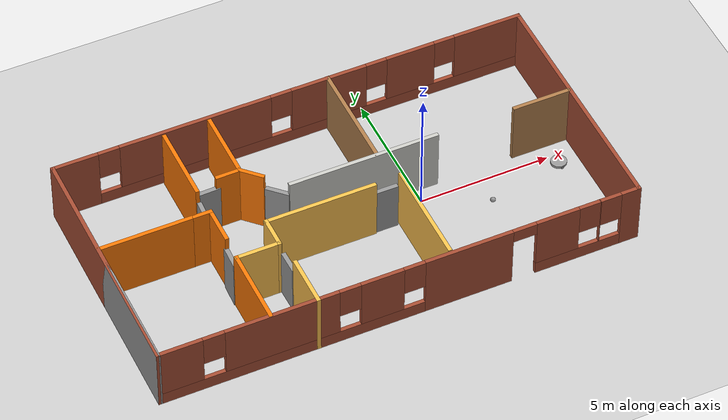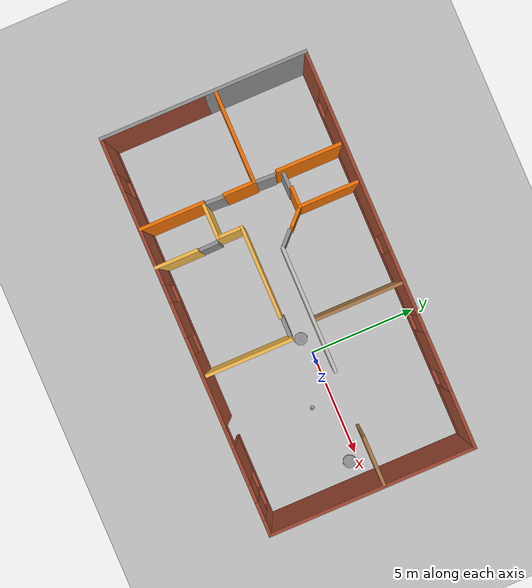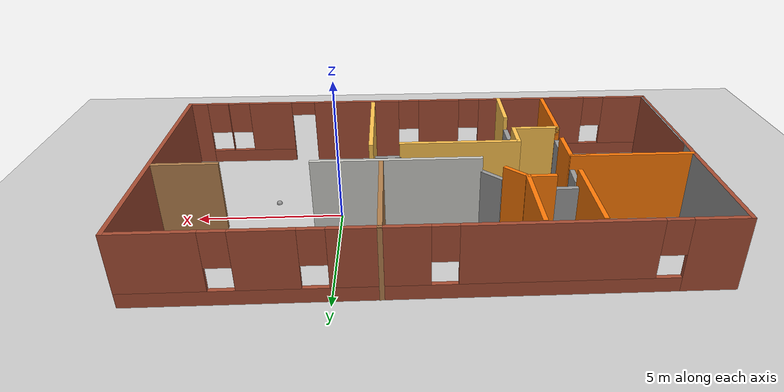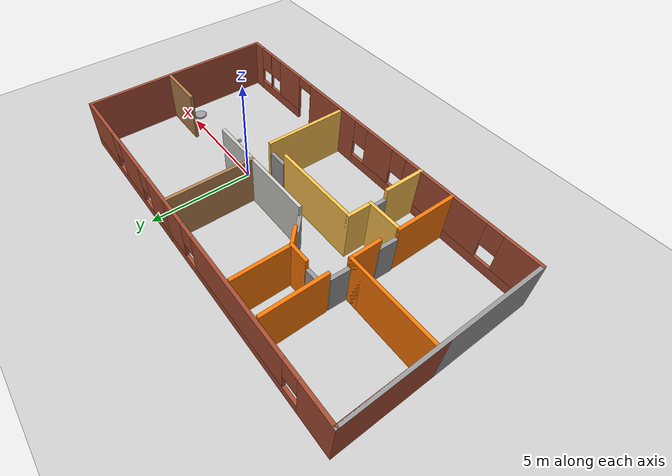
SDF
<sdf version="1.6">
 <world name="default">
  <plugin name="greeting" filename="libgreeting.so"/>
  <light name="sun" type="directional">
   <pose>0 0 10 0 -0 0</pose>
   <diffuse>0.8 0.8 0.8 1</diffuse>
   <specular>0.2 0.2 0.2 1</specular>
   <attenuation>
    <range>1000</range>
    <constant>0.9</constant>
    <linear>0.01</linear>
    <quadratic>0.001</quadratic>
   </attenuation>
   <direction>-0.5 0.1 -0.9</direction>
  </light>
  <model name="ground_plane">
   <static>1</static>
   <link name="link">
    <collision name="collision">
     <geometry><plane><normal>0 0 1</normal><size>100 100</size></plane></geometry>
     <surface><friction><ode><mu>100</mu><mu2>50</mu2></ode></friction></surface>
    </collision>
    <visual name="visual">
     <cast_shadows>0</cast_shadows>
     <geometry><plane><normal>0 0 1</normal><size>100 100</size></plane></geometry>
     <material>
      <script><uri>file://media/materials/scripts/gazebo.material</uri><name>Gazebo/Grey</name></script>
     </material>
    </visual>
   </link>
  </model>
  <gravity>0 0 -9.8</gravity>
  <magnetic_field>6e-06 2.3e-05 -4.2e-05</magnetic_field>
  <atmosphere type="adiabatic"/>
  <physics name="default_physics" default="0" type="ode">
   <max_step_size>0.001</max_step_size>
   <real_time_factor>1</real_time_factor>
   <real_time_update_rate>1000</real_time_update_rate>
  </physics>
  <scene><ambient>0.4 0.4 0.4 1</ambient><background>0.7 0.7 0.7 1</background><shadows>1</shadows></scene>
  <spherical_coordinates>
   <surface_model>EARTH_WGS84</surface_model>
   <latitude_deg>0</latitude_deg>
   <longitude_deg>0</longitude_deg>
   <elevation>0</elevation>
   <heading_deg>0</heading_deg>
  </spherical_coordinates>
  <model name="building">
   <pose>-2.94914 0.04441 0 0 -0 0</pose>
   <link name="Door_1">
    <collision name="Door_1_Collision">
     <geometry><box><size>0.9 0.17 2</size></box></geometry>
     <pose>0 0 1 0 -0 0</pose>
    </collision>
    <visual name="Door_1_Visual">
     <pose>0 0 1 0 -0 0</pose>
     <geometry><box><size>0.9 0.17 2</size></box></geometry>
     <material>
      <script><uri>file://media/materials/scripts/gazebo.material</uri><name>Gazebo/Grey</name></script>
     </material>
    </visual>
    <pose>-4.38941 1.85864 0 0 0 -3.11838</pose>
   </link>
   <link name="Door_2">
    <collision name="Door_2_Collision">
     <geometry><box><size>0.9 0.17 2</size></box></geometry>
     <pose>0 0 1 0 -0 0</pose>
    </collision>
    <visual name="Door_2_Visual">
     <pose>0 0 1 0 -0 0</pose>
     <geometry><box><size>0.9 0.17 2</size></box></geometry>
     <material>
      <script><uri>file://media/materials/scripts/gazebo.material</uri><name>Gazebo/Grey</name></script>
     </material>
    </visual>
    <pose>-4.90957 1.04007 0 0 0 -1.61302</pose>
   </link>
   <link name="Door_3">
    <collision name="Door_3_Collision">
     <geometry><box><size>0.9 0.17 2</size></box></geometry>
     <pose>0 0 1 0 -0 0</pose>
    </collision>
    <visual name="Door_3_Visual">
     <pose>0 0 1 0 -0 0</pose>
     <geometry><box><size>0.9 0.17 2</size></box></geometry>
     <material>
      <script><uri>file://media/materials/scripts/gazebo.material</uri><name>Gazebo/Grey</name></script>
     </material>
    </visual>
    <pose>-4.90957 -1.28479 0 0 0 -1.60782</pose>
   </link>
   <link name="Door_4">
    <collision name="Door_4_Collision">
     <geometry><box><size>0.9 0.17 2</size></box></geometry>
     <pose>0 0 1 0 -0 0</pose>
    </collision>
    <visual name="Door_4_Visual">
     <pose>0 0 1 0 -0 0</pose>
     <geometry><box><size>0.9 0.17 2</size></box></geometry>
     <material>
      <script><uri>file://media/materials/scripts/gazebo.material</uri><name>Gazebo/Grey</name></script>
     </material>
    </visual>
    <pose>-3.19652 -2.32486 0 0 0 -1.55609</pose>
   </link>
   <link name="Door_5">
    <collision name="Door_5_Collision">
     <geometry><box><size>0.9 0.17 2</size></box></geometry>
     <pose>0 0 1 0 -0 0</pose>
    </collision>
    <visual name="Door_5_Visual">
     <pose>0 0 1 0 -0 0</pose>
     <geometry><box><size>0.9 0.17 2</size></box></geometry>
     <material>
      <script><uri>file://media/materials/scripts/gazebo.material</uri><name>Gazebo/Grey</name></script>
     </material>
    </visual>
    <pose>1.26966 -0.642395 0 0 -0 0</pose>
   </link>
   <link name="Door_7">
    <collision name="Door_7_Collision">
     <geometry><box><size>0.9 0.17 2</size></box></geometry>
     <pose>0 0 1 0 -0 0</pose>
    </collision>
    <visual name="Door_7_Visual">
     <pose>0 0 1 0 -0 0</pose>
     <geometry><box><size>0.9 0.17 2</size></box></geometry>
     <material>
      <script><uri>file://media/materials/scripts/gazebo.material</uri><name>Gazebo/Grey</name></script>
     </material>
    </visual>
    <pose>-2.18704 0.856526 0 0 -0 2.36718</pose>
   </link>
   <link name="Wall_0">
    <collision name="Wall_0_Collision">
     <geometry><box><size>9.5 0.15 2.5</size></box></geometry>
     <pose>0 0 1.25 0 -0 0</pose>
    </collision>
    <visual name="Wall_0_Visual">
     <pose>0 0 1.25 0 -0 0</pose>
     <geometry><box><size>9.5 0.15 2.5</size></box></geometry>
     <material>
      <script><uri>file://media/materials/scripts/gazebo.material</uri><name>Gazebo/Grey</name></script>
      <ambient>1 1 1 1</ambient>
     </material>
     <meta><layer>0</layer></meta>
    </visual>
    <pose>-9.05 -0.002064 0 0 0 -1.5708</pose>
   </link>
   <link name="Wall_1">
    <collision name="Wall_1_Collision">
     <geometry><box><size>9.5 0.15 2.5</size></box></geometry>
     <pose>0 0 1.25 0 -0 0</pose>
    </collision>
    <visual name="Wall_1_Visual">
     <pose>0 0 1.25 0 -0 0</pose>
     <geometry><box><size>9.5 0.15 2.5</size></box></geometry>
     <material>
      <script><uri>file://media/materials/scripts/gazebo.material</uri><name>Gazebo/Bricks</name></script>
      <ambient>0.760784 0.662745 0.627451 1</ambient>
     </material>
     <meta><layer>0</layer></meta>
    </visual>
    <pose>-9.05 -0.002064 0 0 -0 1.5708</pose>
   </link>
   <link name="Wall_11">
    <collision name="Wall_11_Collision">
     <geometry><box><size>0.75 0.15 2.5</size></box></geometry>
     <pose>0 0 1.25 0 -0 0</pose>
    </collision>
    <visual name="Wall_11_Visual">
     <pose>0 0 1.25 0 -0 0</pose>
     <geometry><box><size>0.75 0.15 2.5</size></box></geometry>
     <material>
      <script><uri>file://media/materials/scripts/gazebo.material</uri><name>Gazebo/Grey</name></script>
      <ambient>0.996078 0.47451 0.0196078 1</ambient>
     </material>
     <meta><layer>0</layer></meta>
    </visual>
    <pose>-5.16476 0.532558 0 0 -0 0</pose>
   </link>
   <link name="Wall_14">
    <collision name="Wall_14_Collision">
     <geometry><box><size>3 0.15 2.5</size></box></geometry>
     <pose>0 0 1.25 0 -0 0</pose>
    </collision>
    <visual name="Wall_14_Visual">
     <pose>0 0 1.25 0 -0 0</pose>
     <geometry><box><size>3 0.15 2.5</size></box></geometry>
     <material>
      <script><uri>file://media/materials/scripts/gazebo.material</uri><name>Gazebo/Grey</name></script>
      <ambient>0.996078 0.47451 0.0196078 1</ambient>
     </material>
     <meta><layer>0</layer></meta>
    </visual>
    <pose>-4.90962 -3.2237 0 0 -0 1.5708</pose>
   </link>
   <link name="Wall_15">
    <collision name="Wall_15_Collision">
     <geometry><box><size>1.75 0.15 2.5</size></box></geometry>
     <pose>0 0 1.25 0 -0 0</pose>
    </collision>
    <visual name="Wall_15_Visual">
     <pose>0 0 1.25 0 -0 0</pose>
     <geometry><box><size>1.75 0.15 2.5</size></box></geometry>
     <material>
      <script><uri>file://media/materials/scripts/gazebo.material</uri><name>Gazebo/Grey</name></script>
      <ambient>1 0.764706 0.305882 1</ambient>
     </material>
     <meta><layer>0</layer></meta>
    </visual>
    <pose>-4.10962 -1.7987 0 0 -0 0</pose>
   </link>
   <link name="Wall_16">
    <collision name="Wall_16_Collision">
     <geometry><box><size>1.25 0.15 2.5</size></box></geometry>
     <pose>0 0 1.25 0 -0 0</pose>
    </collision>
    <visual name="Wall_16_Visual">
     <pose>0 0 1.25 0 -0 0</pose>
     <geometry><box><size>1.25 0.15 2.5</size></box></geometry>
     <material>
      <script><uri>file://media/materials/scripts/gazebo.material</uri><name>Gazebo/Grey</name></script>
      <ambient>1 0.764706 0.305882 1</ambient>
     </material>
     <meta><layer>0</layer></meta>
    </visual>
    <pose>-3.30962 -1.2487 0 0 -0 1.5708</pose>
   </link>
   <link name="Wall_17">
    <collision name="Wall_17_Collision">
     <geometry><box><size>4.25 0.15 2.5</size></box></geometry>
     <pose>0 0 1.25 0 -0 0</pose>
    </collision>
    <visual name="Wall_17_Visual">
     <pose>0 0 1.25 0 -0 0</pose>
     <geometry><box><size>4.25 0.15 2.5</size></box></geometry>
     <material>
      <script><uri>file://media/materials/scripts/gazebo.material</uri><name>Gazebo/Grey</name></script>
      <ambient>1 0.764706 0.305882 1</ambient>
     </material>
     <meta><layer>0</layer></meta>
    </visual>
    <pose>-1.25962 -0.698699 0 0 -0 0</pose>
   </link>
   <link name="Wall_19">
    <collision name="Wall_19_Collision">
     <geometry><box><size>4 0.15 2.5</size></box></geometry>
     <pose>0 0 1.25 0 -0 0</pose>
    </collision>
    <visual name="Wall_19_Visual">
     <pose>0 0 1.25 0 -0 0</pose>
     <geometry><box><size>4 0.15 2.5</size></box></geometry>
     <material>
      <script><uri>file://media/materials/scripts/gazebo.material</uri><name>Gazebo/Grey</name></script>
      <ambient>1 0.764706 0.305882 1</ambient>
     </material>
     <meta><layer>0</layer></meta>
    </visual>
    <pose>1.85087 -2.56739 0 0 0 -1.5708</pose>
   </link>
   <link name="Wall_2">
    <pose>0 4.67294 0 0 -0 0</pose>
    <visual name="Wall_2_Visual_0">
     <pose>-8.24206 0 1.25 0 -0 0</pose>
     <geometry><box><size>1.76589 0.15 2.5</size></box></geometry>
     <material>
      <script><uri>file://media/materials/scripts/gazebo.material</uri><name>Gazebo/Bricks</name></script>
      <ambient>0.760784 0.662745 0.627451 1</ambient>
     </material>
     <meta><layer>0</layer></meta>
    </visual>
    <collision name="Wall_2_Collision_0">
     <geometry><box><size>1.76589 0.15 2.5</size></box></geometry>
     <pose>-8.24206 0 1.25 0 -0 0</pose>
    </collision>
    <visual name="Wall_2_Visual_1">
     <pose>0.882943 0 0.25 0 -0 0</pose>
     <geometry><box><size>16.4841 0.15 0.5</size></box></geometry>
     <material>
      <script><uri>file://media/materials/scripts/gazebo.material</uri><name>Gazebo/Bricks</name></script>
      <ambient>0.760784 0.662745 0.627451 1</ambient>
     </material>
     <meta><layer>0</layer></meta>
    </visual>
    <collision name="Wall_2_Collision_1">
     <geometry><box><size>16.4841 0.15 0.5</size></box></geometry>
     <pose>0.882943 0 0.25 0 -0 0</pose>
    </collision>
    <visual name="Wall_2_Visual_2">
     <pose>-3.65537 0 1.5 0 -0 0</pose>
     <geometry><box><size>5.80749 0.15 2</size></box></geometry>
     <material>
      <script><uri>file://media/materials/scripts/gazebo.material</uri><name>Gazebo/Bricks</name></script>
      <ambient>0.760784 0.662745 0.627451 1</ambient>
     </material>
     <meta><layer>0</layer></meta>
    </visual>
    <collision name="Wall_2_Collision_2">
     <geometry><box><size>5.80749 0.15 2</size></box></geometry>
     <pose>-3.65537 0 1.5 0 -0 0</pose>
    </collision>
    <visual name="Wall_2_Visual_3">
     <pose>1.51438 0 1.5 0 -0 0</pose>
     <geometry><box><size>2.93201 0.15 2</size></box></geometry>
     <material>
      <script><uri>file://media/materials/scripts/gazebo.material</uri><name>Gazebo/Bricks</name></script>
      <ambient>0.760784 0.662745 0.627451 1</ambient>
     </material>
     <meta><layer>0</layer></meta>
    </visual>
    <collision name="Wall_2_Collision_3">
     <geometry><box><size>2.93201 0.15 2</size></box></geometry>
     <pose>1.51438 0 1.5 0 -0 0</pose>
    </collision>
    <visual name="Wall_2_Visual_4">
     <pose>4.72635 0 1.5 0 -0 0</pose>
     <geometry><box><size>1.89194 0.15 2</size></box></geometry>
     <material>
      <script><uri>file://media/materials/scripts/gazebo.material</uri><name>Gazebo/Bricks</name></script>
      <ambient>0.760784 0.662745 0.627451 1</ambient>
     </material>
     <meta><layer>0</layer></meta>
    </visual>
    <collision name="Wall_2_Collision_4">
     <geometry><box><size>1.89194 0.15 2</size></box></geometry>
     <pose>4.72635 0 1.5 0 -0 0</pose>
    </collision>
    <visual name="Wall_2_Visual_5">
     <pose>7.79866 0 1.5 0 -0 0</pose>
     <geometry><box><size>2.65268 0.15 2</size></box></geometry>
     <material>
      <script><uri>file://media/materials/scripts/gazebo.material</uri><name>Gazebo/Bricks</name></script>
      <ambient>0.760784 0.662745 0.627451 1</ambient>
     </material>
     <meta><layer>0</layer></meta>
    </visual>
    <collision name="Wall_2_Collision_5">
     <geometry><box><size>2.65268 0.15 2</size></box></geometry>
     <pose>7.79866 0 1.5 0 -0 0</pose>
    </collision>
    <visual name="Wall_2_Visual_6">
     <pose>-6.95911 0 1.9 0 -0 0</pose>
     <geometry><box><size>0.8 0.15 1.2</size></box></geometry>
     <material>
      <script><uri>file://media/materials/scripts/gazebo.material</uri><name>Gazebo/Bricks</name></script>
      <ambient>0.760784 0.662745 0.627451 1</ambient>
     </material>
     <meta><layer>0</layer></meta>
    </visual>
    <collision name="Wall_2_Collision_6">
     <geometry><box><size>0.8 0.15 1.2</size></box></geometry>
     <pose>-6.95911 0 1.9 0 -0 0</pose>
    </collision>
    <visual name="Wall_2_Visual_7">
     <pose>-0.351624 0 1.9 0 -0 0</pose>
     <geometry><box><size>0.8 0.15 1.2</size></box></geometry>
     <material>
      <script><uri>file://media/materials/scripts/gazebo.material</uri><name>Gazebo/Bricks</name></script>
      <ambient>0.760784 0.662745 0.627451 1</ambient>
     </material>
     <meta><layer>0</layer></meta>
    </visual>
    <collision name="Wall_2_Collision_7">
     <geometry><box><size>0.8 0.15 1.2</size></box></geometry>
     <pose>-0.351624 0 1.9 0 -0 0</pose>
    </collision>
    <visual name="Wall_2_Visual_8">
     <pose>3.38038 0 1.9 0 -0 0</pose>
     <geometry><box><size>0.8 0.15 1.2</size></box></geometry>
     <material>
      <script><uri>file://media/materials/scripts/gazebo.material</uri><name>Gazebo/Bricks</name></script>
      <ambient>0.760784 0.662745 0.627451 1</ambient>
     </material>
     <meta><layer>0</layer></meta>
    </visual>
    <collision name="Wall_2_Collision_8">
     <geometry><box><size>0.8 0.15 1.2</size></box></geometry>
     <pose>3.38038 0 1.9 0 -0 0</pose>
    </collision>
    <visual name="Wall_2_Visual_9">
     <pose>6.07232 0 1.9 0 -0 0</pose>
     <geometry><box><size>0.8 0.15 1.2</size></box></geometry>
     <material>
      <script><uri>file://media/materials/scripts/gazebo.material</uri><name>Gazebo/Bricks</name></script>
      <ambient>0.760784 0.662745 0.627451 1</ambient>
     </material>
     <meta><layer>0</layer></meta>
    </visual>
    <collision name="Wall_2_Collision_9">
     <geometry><box><size>0.8 0.15 1.2</size></box></geometry>
     <pose>6.07232 0 1.9 0 -0 0</pose>
    </collision>
   </link>
   <link name="Wall_21">
    <collision name="Wall_21_Collision">
     <geometry><box><size>5.75 0.15 2.5</size></box></geometry>
     <pose>0 0 1.25 0 -0 0</pose>
    </collision>
    <visual name="Wall_21_Visual">
     <pose>0 0 1.25 0 -0 0</pose>
     <geometry><box><size>5.75 0.15 2.5</size></box></geometry>
     <material>
      <script><uri>file://media/materials/scripts/gazebo.material</uri><name>Gazebo/CeilingTiled</name></script>
      <ambient>0.435294 0.796078 0.67451 1</ambient>
     </material>
     <meta><layer>0</layer></meta>
    </visual>
    <pose>0.978057 0.550624 0 0 -0 3.14159</pose>
   </link>
   <link name="Wall_23">
    <collision name="Wall_23_Collision">
     <geometry><box><size>4.25 0.15 2.5</size></box></geometry>
     <pose>0 0 1.25 0 -0 0</pose>
    </collision>
    <visual name="Wall_23_Visual">
     <pose>0 0 1.25 0 -0 0</pose>
     <geometry><box><size>4.25 0.15 2.5</size></box></geometry>
     <material>
      <script><uri>file://media/materials/scripts/gazebo.material</uri><name>Gazebo/Wood</name></script>
      <ambient>0.435294 0.796078 0.67451 1</ambient>
     </material>
     <meta><layer>0</layer></meta>
    </visual>
    <pose>1.48379 2.6303 0 0 0 -1.5708</pose>
   </link>
   <link name="Wall_25">
    <collision name="Wall_25_Collision">
     <geometry><box><size>2.25 0.15 2.5</size></box></geometry>
     <pose>0 0 1.25 0 -0 0</pose>
    </collision>
    <visual name="Wall_25_Visual">
     <pose>0 0 1.25 0 -0 0</pose>
     <geometry><box><size>2.25 0.15 2.5</size></box></geometry>
     <material>
      <script><uri>file://media/materials/scripts/gazebo.material</uri><name>Gazebo/Wood</name></script>
      <ambient>0.435294 0.796078 0.67451 1</ambient>
     </material>
     <meta><layer>0</layer></meta>
    </visual>
    <pose>7.91767 0.550624 0 0 -0 0</pose>
   </link>
   <link name="Wall_27">
    <collision name="Wall_27_Collision">
     <geometry><box><size>3 0.15 2.5</size></box></geometry>
     <pose>0 0 1.25 0 -0 0</pose>
    </collision>
    <visual name="Wall_27_Visual">
     <pose>0 0 1.25 0 -0 0</pose>
     <geometry><box><size>3 0.15 2.5</size></box></geometry>
     <material>
      <script><uri>file://media/materials/scripts/gazebo.material</uri><name>Gazebo/Grey</name></script>
      <ambient>0.996078 0.47451 0.0196078 1</ambient>
     </material>
     <meta><layer>0</layer></meta>
    </visual>
    <pose>-4.90957 3.04628 0 0 -0 1.5708</pose>
   </link>
   <link name="Wall_29">
    <collision name="Wall_29_Collision">
     <geometry><box><size>2.75 0.15 2.5</size></box></geometry>
     <pose>0 0 1.25 0 -0 0</pose>
    </collision>
    <visual name="Wall_29_Visual">
     <pose>0 0 1.25 0 -0 0</pose>
     <geometry><box><size>2.75 0.15 2.5</size></box></geometry>
     <material>
      <script><uri>file://media/materials/scripts/gazebo.material</uri><name>Gazebo/Grey</name></script>
      <ambient>0.996078 0.47451 0.0196078 1</ambient>
     </material>
     <meta><layer>0</layer></meta>
    </visual>
    <pose>-3.16593 3.19659 0 0 -0 1.5708</pose>
   </link>
   <link name="Wall_3">
    <collision name="Wall_3_Collision">
     <geometry><box><size>9.5 0.15 2.5</size></box></geometry>
     <pose>0 0 1.25 0 -0 0</pose>
    </collision>
    <visual name="Wall_3_Visual">
     <pose>0 0 1.25 0 -0 0</pose>
     <geometry><box><size>9.5 0.15 2.5</size></box></geometry>
     <material>
      <script><uri>file://media/materials/scripts/gazebo.material</uri><name>Gazebo/Bricks</name></script>
      <ambient>0.760784 0.662745 0.627451 1</ambient>
     </material>
     <meta><layer>0</layer></meta>
    </visual>
    <pose>9.05 -0.002064 0 0 0 -1.5708</pose>
   </link>
   <link name="Wall_31">
    <collision name="Wall_31_Collision">
     <geometry><box><size>1 0.15 2.5</size></box></geometry>
     <pose>0 0 1.25 0 -0 0</pose>
    </collision>
    <visual name="Wall_31_Visual">
     <pose>0 0 1.25 0 -0 0</pose>
     <geometry><box><size>1 0.15 2.5</size></box></geometry>
     <material>
      <script><uri>file://media/materials/scripts/gazebo.material</uri><name>Gazebo/Grey</name></script>
      <ambient>0.996078 0.47451 0.0196078 1</ambient>
     </material>
     <meta><layer>0</layer></meta>
    </visual>
    <pose>-3.59092 1.89659 0 0 -0 3.14159</pose>
   </link>
   <link name="Wall_33">
    <collision name="Wall_33_Collision">
     <geometry><box><size>1.5 0.15 2.5</size></box></geometry>
     <pose>0 0 1.25 0 -0 0</pose>
    </collision>
    <visual name="Wall_33_Visual">
     <pose>0 0 1.25 0 -0 0</pose>
     <geometry><box><size>1.5 0.15 2.5</size></box></geometry>
     <material>
      <script><uri>file://media/materials/scripts/gazebo.material</uri><name>Gazebo/Grey</name></script>
      <ambient>0.996078 0.47451 0.0196078 1</ambient>
     </material>
     <meta><layer>0</layer></meta>
    </visual>
    <pose>-4.86476 -0.142442 0 0 0 -1.5708</pose>
   </link>
   <link name="Wall_35">
    <collision name="Wall_35_Collision">
     <geometry><box><size>2 0.15 2.5</size></box></geometry>
     <pose>0 0 1.25 0 -0 0</pose>
    </collision>
    <visual name="Wall_35_Visual">
     <pose>0 0 1.25 0 -0 0</pose>
     <geometry><box><size>2 0.15 2.5</size></box></geometry>
     <material>
      <script><uri>file://media/materials/scripts/gazebo.material</uri><name>Gazebo/Grey</name></script>
      <ambient>1 0.764706 0.305882 1</ambient>
     </material>
     <meta><layer>0</layer></meta>
    </visual>
    <pose>-3.16593 -3.7553 0 0 -0 1.5708</pose>
   </link>
   <link name="Wall_37">
    <collision name="Wall_37_Collision">
     <geometry><box><size>1 0.15 2.5</size></box></geometry>
     <pose>0 0 1.25 0 -0 0</pose>
    </collision>
    <visual name="Wall_37_Visual">
     <pose>0 0 1.25 0 -0 0</pose>
     <geometry><box><size>1 0.15 2.5</size></box></geometry>
     <material>
      <script><uri>file://media/materials/scripts/gazebo.material</uri><name>Gazebo/Grey</name></script>
      <ambient>0.996078 0.47451 0.0196078 1</ambient>
     </material>
     <meta><layer>0</layer></meta>
    </visual>
    <pose>-2.8654 1.59607 0 0 0 -0.785398</pose>
   </link>
   <link name="Wall_4">
    <pose>0 -4.67706 0 0 -0 3.14159</pose>
    <visual name="Wall_4_Visual_0">
     <pose>-8.74696 0 1.25 0 -0 0</pose>
     <geometry><box><size>0.756082 0.15 2.5</size></box></geometry>
     <material>
      <script><uri>file://media/materials/scripts/gazebo.material</uri><name>Gazebo/Bricks</name></script>
      <ambient>0.760784 0.662745 0.627451 1</ambient>
     </material>
     <meta><layer>0</layer></meta>
    </visual>
    <collision name="Wall_4_Collision_0">
     <geometry><box><size>0.756082 0.15 2.5</size></box></geometry>
     <pose>-8.74696 0 1.25 0 -0 0</pose>
    </collision>
    <visual name="Wall_4_Visual_1">
     <pose>-2.51415 0 1.25 0 -0 0</pose>
     <geometry><box><size>3.34086 0.15 2.5</size></box></geometry>
     <material>
      <script><uri>file://media/materials/scripts/gazebo.material</uri><name>Gazebo/Bricks</name></script>
      <ambient>0.760784 0.662745 0.627451 1</ambient>
     </material>
     <meta><layer>0</layer></meta>
    </visual>
    <collision name="Wall_4_Collision_1">
     <geometry><box><size>3.34086 0.15 2.5</size></box></geometry>
     <pose>-2.51415 0 1.25 0 -0 0</pose>
    </collision>
    <visual name="Wall_4_Visual_2">
     <pose>-6.72675 0 0.25 0 -0 0</pose>
     <geometry><box><size>3.28434 0.15 0.5</size></box></geometry>
     <material>
      <script><uri>file://media/materials/scripts/gazebo.material</uri><name>Gazebo/Bricks</name></script>
      <ambient>0.760784 0.662745 0.627451 1</ambient>
     </material>
     <meta><layer>0</layer></meta>
    </visual>
    <collision name="Wall_4_Collision_2">
     <geometry><box><size>3.28434 0.15 0.5</size></box></geometry>
     <pose>-6.72675 0 0.25 0 -0 0</pose>
    </collision>
    <visual name="Wall_4_Visual_3">
     <pose>4.14064 0 0.25 0 -0 0</pose>
     <geometry><box><size>9.96872 0.15 0.5</size></box></geometry>
     <material>
      <script><uri>file://media/materials/scripts/gazebo.material</uri><name>Gazebo/Bricks</name></script>
      <ambient>0.760784 0.662745 0.627451 1</ambient>
     </material>
     <meta><layer>0</layer></meta>
    </visual>
    <collision name="Wall_4_Collision_3">
     <geometry><box><size>9.96872 0.15 0.5</size></box></geometry>
     <pose>4.14064 0 0.25 0 -0 0</pose>
    </collision>
    <visual name="Wall_4_Visual_4">
     <pose>-7.55595 0 1.5 0 -0 0</pose>
     <geometry><box><size>0.025936 0.15 2</size></box></geometry>
     <material>
      <script><uri>file://media/materials/scripts/gazebo.material</uri><name>Gazebo/Bricks</name></script>
      <ambient>0.760784 0.662745 0.627451 1</ambient>
     </material>
     <meta><layer>0</layer></meta>
    </visual>
    <collision name="Wall_4_Collision_4">
     <geometry><box><size>0.025936 0.15 2</size></box></geometry>
     <pose>-7.55595 0 1.5 0 -0 0</pose>
    </collision>
    <visual name="Wall_4_Visual_5">
     <pose>-5.91378 0 1.5 0 -0 0</pose>
     <geometry><box><size>1.6584 0.15 2</size></box></geometry>
     <material>
      <script><uri>file://media/materials/scripts/gazebo.material</uri><name>Gazebo/Bricks</name></script>
      <ambient>0.760784 0.662745 0.627451 1</ambient>
     </material>
     <meta><layer>0</layer></meta>
    </visual>
    <collision name="Wall_4_Collision_5">
     <geometry><box><size>1.6584 0.15 2</size></box></geometry>
     <pose>-5.91378 0 1.5 0 -0 0</pose>
    </collision>
    <visual name="Wall_4_Visual_6">
     <pose>-5.91378 0 1.5 0 -0 0</pose>
     <geometry><box><size>1.6584 0.15 2</size></box></geometry>
     <material>
      <script><uri>file://media/materials/scripts/gazebo.material</uri><name>Gazebo/Bricks</name></script>
      <ambient>0.760784 0.662745 0.627451 1</ambient>
     </material>
     <meta><layer>0</layer></meta>
    </visual>
    <collision name="Wall_4_Collision_6">
     <geometry><box><size>1.6584 0.15 2</size></box></geometry>
     <pose>-5.91378 0 1.5 0 -0 0</pose>
    </collision>
    <visual name="Wall_4_Visual_7">
     <pose>0.764592 0 1.5 0 -0 0</pose>
     <geometry><box><size>1.61663 0.15 2</size></box></geometry>
     <material>
      <script><uri>file://media/materials/scripts/gazebo.material</uri><name>Gazebo/Bricks</name></script>
      <ambient>0.760784 0.662745 0.627451 1</ambient>
     </material>
     <meta><layer>0</layer></meta>
    </visual>
    <collision name="Wall_4_Collision_7">
     <geometry><box><size>1.61663 0.15 2</size></box></geometry>
     <pose>0.764592 0 1.5 0 -0 0</pose>
    </collision>
    <visual name="Wall_4_Visual_8">
     <pose>4.4966 0 1.5 0 -0 0</pose>
     <geometry><box><size>4.24739 0.15 2</size></box></geometry>
     <material>
      <script><uri>file://media/materials/scripts/gazebo.material</uri><name>Gazebo/Bricks</name></script>
      <ambient>0.760784 0.662745 0.627451 1</ambient>
     </material>
     <meta><layer>0</layer></meta>
    </visual>
    <collision name="Wall_4_Collision_8">
     <geometry><box><size>4.24739 0.15 2</size></box></geometry>
     <pose>4.4966 0 1.5 0 -0 0</pose>
    </collision>
    <visual name="Wall_4_Visual_9">
     <pose>8.27265 0 1.5 0 -0 0</pose>
     <geometry><box><size>1.70471 0.15 2</size></box></geometry>
     <material>
      <script><uri>file://media/materials/scripts/gazebo.material</uri><name>Gazebo/Bricks</name></script>
      <ambient>0.760784 0.662745 0.627451 1</ambient>
     </material>
     <meta><layer>0</layer></meta>
    </visual>
    <collision name="Wall_4_Collision_9">
     <geometry><box><size>1.70471 0.15 2</size></box></geometry>
     <pose>8.27265 0 1.5 0 -0 0</pose>
    </collision>
    <visual name="Wall_4_Visual_10">
     <pose>-7.96892 0 1.9 0 -0 0</pose>
     <geometry><box><size>0.8 0.15 1.2</size></box></geometry>
     <material>
      <script><uri>file://media/materials/scripts/gazebo.material</uri><name>Gazebo/Bricks</name></script>
      <ambient>0.760784 0.662745 0.627451 1</ambient>
     </material>
     <meta><layer>0</layer></meta>
    </visual>
    <collision name="Wall_4_Collision_10">
     <geometry><box><size>0.8 0.15 1.2</size></box></geometry>
     <pose>-7.96892 0 1.9 0 -0 0</pose>
    </collision>
    <visual name="Wall_4_Visual_11">
     <pose>-0.443722 0 1.9 0 -0 0</pose>
     <geometry><box><size>0.8 0.15 1.2</size></box></geometry>
     <material>
      <script><uri>file://media/materials/scripts/gazebo.material</uri><name>Gazebo/Bricks</name></script>
      <ambient>0.760784 0.662745 0.627451 1</ambient>
     </material>
     <meta><layer>0</layer></meta>
    </visual>
    <collision name="Wall_4_Collision_11">
     <geometry><box><size>0.8 0.15 1.2</size></box></geometry>
     <pose>-0.443722 0 1.9 0 -0 0</pose>
    </collision>
    <visual name="Wall_4_Visual_12">
     <pose>-7.14298 0 1.9 0 -0 0</pose>
     <geometry><box><size>0.8 0.15 1.2</size></box></geometry>
     <material>
      <script><uri>file://media/materials/scripts/gazebo.material</uri><name>Gazebo/Bricks</name></script>
      <ambient>0.760784 0.662745 0.627451 1</ambient>
     </material>
     <meta><layer>0</layer></meta>
    </visual>
    <collision name="Wall_4_Collision_12">
     <geometry><box><size>0.8 0.15 1.2</size></box></geometry>
     <pose>-7.14298 0 1.9 0 -0 0</pose>
    </collision>
    <visual name="Wall_4_Visual_13">
     <pose>1.97291 0 1.9 0 -0 0</pose>
     <geometry><box><size>0.8 0.15 1.2</size></box></geometry>
     <material>
      <script><uri>file://media/materials/scripts/gazebo.material</uri><name>Gazebo/Bricks</name></script>
      <ambient>0.760784 0.662745 0.627451 1</ambient>
     </material>
     <meta><layer>0</layer></meta>
    </visual>
    <collision name="Wall_4_Collision_13">
     <geometry><box><size>0.8 0.15 1.2</size></box></geometry>
     <pose>1.97291 0 1.9 0 -0 0</pose>
    </collision>
    <visual name="Wall_4_Visual_14">
     <pose>7.02029 0 1.9 0 -0 0</pose>
     <geometry><box><size>0.8 0.15 1.2</size></box></geometry>
     <material>
      <script><uri>file://media/materials/scripts/gazebo.material</uri><name>Gazebo/Bricks</name></script>
      <ambient>0.760784 0.662745 0.627451 1</ambient>
     </material>
     <meta><layer>0</layer></meta>
    </visual>
    <collision name="Wall_4_Collision_14">
     <geometry><box><size>0.8 0.15 1.2</size></box></geometry>
     <pose>7.02029 0 1.9 0 -0 0</pose>
    </collision>
    <visual name="Wall_4_Visual_15">
     <pose>-4.63458 0 2.25 0 -0 0</pose>
     <geometry><box><size>0.9 0.15 0.5</size></box></geometry>
     <material>
      <script><uri>file://media/materials/scripts/gazebo.material</uri><name>Gazebo/Bricks</name></script>
      <ambient>0.760784 0.662745 0.627451 1</ambient>
     </material>
     <meta><layer>0</layer></meta>
    </visual>
    <collision name="Wall_4_Collision_15">
     <geometry><box><size>0.9 0.15 0.5</size></box></geometry>
     <pose>-4.63458 0 2.25 0 -0 0</pose>
    </collision>
    <visual name="Wall_4_Visual_16">
     <pose>-4.63458 0 2.25 0 -0 0</pose>
     <geometry><box><size>0.9 0.15 0.5</size></box></geometry>
     <material>
      <script><uri>file://media/materials/scripts/gazebo.material</uri><name>Gazebo/Bricks</name></script>
      <ambient>0.760784 0.662745 0.627451 1</ambient>
     </material>
     <meta><layer>0</layer></meta>
    </visual>
    <collision name="Wall_4_Collision_16">
     <geometry><box><size>0.9 0.15 0.5</size></box></geometry>
     <pose>-4.63458 0 2.25 0 -0 0</pose>
    </collision>
   </link>
   <link name="Wall_9">
    <collision name="Wall_9_Collision">
     <geometry><box><size>4.25 0.15 2.5</size></box></geometry>
     <pose>0 0 1.25 0 -0 0</pose>
    </collision>
    <visual name="Wall_9_Visual">
     <pose>0 0 1.25 0 -0 0</pose>
     <geometry><box><size>4.25 0.15 2.5</size></box></geometry>
     <material>
      <script><uri>file://media/materials/scripts/gazebo.material</uri><name>Gazebo/Grey</name></script>
      <ambient>0.996078 0.47451 0.0196078 1</ambient>
     </material>
     <meta><layer>0</layer></meta>
    </visual>
    <pose>-6.95374 0.532558 0 0 -0 0</pose>
   </link>
   <static>1</static>
  </model>
  <model name="robot">
   <link name="link_1">
    <pose>0 3e-06 0.013333 0 -0 0</pose>
    <inertial>
     <mass>1</mass>
     <inertia><ixx>0.145833</ixx><ixy>0</ixy><ixz>0</ixz><iyy>0.145833</iyy><iyz>0</iyz><izz>0.125</izz></inertia>
    </inertial>
    <visual name="visual">
     <geometry><cylinder><radius>0.3</radius><length>0.1</length></cylinder></geometry>
     <material>
      <lighting>1</lighting>
      <script><uri>file://media/materials/scripts/gazebo.material</uri><name>Gazebo/Grey</name></script>
      <ambient>0.3 0.3 0.3 1</ambient>
      <diffuse>0.7 0.7 0.7 1</diffuse>
      <specular>0.01 0.01 0.01 1</specular>
      <emissive>0 0 0 1</emissive>
      <shader type="vertex"><normal_map>__default__</normal_map></shader>
     </material>
    </visual>
    <collision name="collision">
     <geometry><cylinder><radius>0.3</radius><length>0.1</length></cylinder></geometry>
     <surface>
      <friction>
       <ode><mu>1</mu><mu2>1</mu2><fdir1>0 0 0</fdir1><slip1>0</slip1><slip2>0</slip2></ode>
       <torsional>
        <coefficient>1</coefficient>
        <patch_radius>0</patch_radius>
        <surface_radius>0</surface_radius>
        <use_patch_radius>1</use_patch_radius>
        <ode><slip>0</slip></ode>
       </torsional>
      </friction>
      <bounce><restitution_coefficient>0</restitution_coefficient><threshold>1e+06</threshold></bounce>
      <contact>
       <collide_without_contact>0</collide_without_contact>
       <collide_without_contact_bitmask>1</collide_without_contact_bitmask>
       <collide_bitmask>1</collide_bitmask>
       <ode>
        <soft_cfm>0</soft_cfm>
        <soft_erp>0.2</soft_erp>
        <kp>1e+13</kp>
        <kd>1</kd>
        <max_vel>0.01</max_vel>
        <min_depth>0</min_depth>
       </ode>
       <bullet>
        <split_impulse>1</split_impulse>
        <split_impulse_penetration_threshold>-0.01</split_impulse_penetration_threshold>
        <soft_cfm>0</soft_cfm>
        <soft_erp>0.2</soft_erp>
        <kp>1e+13</kp>
        <kd>1</kd>
       </bullet>
      </contact>
     </surface>
    </collision>
   </link>
   <link name="link_2">
    <pose>0 -0.310011 -0.006667 1.5707 -0 0</pose>
    <inertial>
     <mass>1</mass>
     <inertia><ixx>0.145833</ixx><ixy>0</ixy><ixz>0</ixz><iyy>0.145833</iyy><iyz>0</iyz><izz>0.125</izz></inertia>
    </inertial>
    <visual name="visual">
     <geometry><cylinder><radius>0.05</radius><length>0.02</length></cylinder></geometry>
     <material>
      <lighting>1</lighting>
      <script><uri>file://media/materials/scripts/gazebo.material</uri><name>Gazebo/Grey</name></script>
      <ambient>0.3 0.3 0.3 1</ambient>
      <diffuse>0.7 0.7 0.7 1</diffuse>
      <specular>0.01 0.01 0.01 1</specular>
      <emissive>0 0 0 1</emissive>
      <shader type="vertex"><normal_map>__default__</normal_map></shader>
     </material>
    </visual>
    <collision name="collision">
     <geometry><cylinder><radius>0.05</radius><length>0.02</length></cylinder></geometry>
     <surface>
      <friction>
       <ode><mu>1</mu><mu2>1</mu2><fdir1>0 0 0</fdir1><slip1>0</slip1><slip2>0</slip2></ode>
       <torsional>
        <coefficient>1</coefficient>
        <patch_radius>0</patch_radius>
        <surface_radius>0</surface_radius>
        <use_patch_radius>1</use_patch_radius>
        <ode><slip>0</slip></ode>
       </torsional>
      </friction>
      <bounce><restitution_coefficient>0</restitution_coefficient><threshold>1e+06</threshold></bounce>
      <contact>
       <collide_without_contact>0</collide_without_contact>
       <collide_without_contact_bitmask>1</collide_without_contact_bitmask>
       <collide_bitmask>1</collide_bitmask>
       <ode>
        <soft_cfm>0</soft_cfm>
        <soft_erp>0.2</soft_erp>
        <kp>1e+13</kp>
        <kd>1</kd>
        <max_vel>0.01</max_vel>
        <min_depth>0</min_depth>
       </ode>
       <bullet>
        <split_impulse>1</split_impulse>
        <split_impulse_penetration_threshold>-0.01</split_impulse_penetration_threshold>
        <soft_cfm>0</soft_cfm>
        <soft_erp>0.2</soft_erp>
        <kp>1e+13</kp>
        <kd>1</kd>
       </bullet>
      </contact>
     </surface>
    </collision>
   </link>
   <link name="link_2_clone">
    <pose>0 0.310008 -0.006667 1.5707 -0 0</pose>
    <inertial>
     <mass>1</mass>
     <inertia><ixx>0.145833</ixx><ixy>0</ixy><ixz>0</ixz><iyy>0.145833</iyy><iyz>0</iyz><izz>0.125</izz></inertia>
    </inertial>
    <visual name="visual">
     <geometry><cylinder><radius>0.05</radius><length>0.02</length></cylinder></geometry>
     <material>
      <lighting>1</lighting>
      <script><uri>file://media/materials/scripts/gazebo.material</uri><name>Gazebo/Grey</name></script>
      <ambient>0.3 0.3 0.3 1</ambient>
      <diffuse>0.7 0.7 0.7 1</diffuse>
      <specular>0.01 0.01 0.01 1</specular>
      <emissive>0 0 0 1</emissive>
      <shader type="vertex"><normal_map>__default__</normal_map></shader>
     </material>
    </visual>
    <collision name="collision">
     <geometry><cylinder><radius>0.05</radius><length>0.02</length></cylinder></geometry>
     <surface>
      <friction>
       <ode><mu>1</mu><mu2>1</mu2><fdir1>0 0 0</fdir1><slip1>0</slip1><slip2>0</slip2></ode>
       <torsional>
        <coefficient>1</coefficient>
        <patch_radius>0</patch_radius>
        <surface_radius>0</surface_radius>
        <use_patch_radius>1</use_patch_radius>
        <ode><slip>0</slip></ode>
       </torsional>
      </friction>
      <bounce><restitution_coefficient>0</restitution_coefficient><threshold>1e+06</threshold></bounce>
      <contact>
       <collide_without_contact>0</collide_without_contact>
       <collide_without_contact_bitmask>1</collide_without_contact_bitmask>
       <collide_bitmask>1</collide_bitmask>
       <ode>
        <soft_cfm>0</soft_cfm>
        <soft_erp>0.2</soft_erp>
        <kp>1e+13</kp>
        <kd>1</kd>
        <max_vel>0.01</max_vel>
        <min_depth>0</min_depth>
       </ode>
       <bullet>
        <split_impulse>1</split_impulse>
        <split_impulse_penetration_threshold>-0.01</split_impulse_penetration_threshold>
        <soft_cfm>0</soft_cfm>
        <soft_erp>0.2</soft_erp>
        <kp>1e+13</kp>
        <kd>1</kd>
       </bullet>
      </contact>
     </surface>
    </collision>
   </link>
   <joint name="link_1_JOINT_1" type="revolute">
    <parent>link_1</parent>
    <child>link_2</child>
    <axis>
     <xyz>0 0 1</xyz>
     <use_parent_model_frame>0</use_parent_model_frame>
     <limit>
      <lower>-1.79769e+308</lower>
      <upper>1.79769e+308</upper>
      <effort>-1</effort>
      <velocity>-1</velocity>
     </limit>
     <dynamics>
      <spring_reference>0</spring_reference>
      <spring_stiffness>0</spring_stiffness>
      <damping>0</damping>
     </dynamics>
    </axis>
    <physics>
     <ode><limit><cfm>0</cfm><erp>0.2</erp></limit><suspension><cfm>0</cfm><erp>0.2</erp></suspension></ode>
    </physics>
   </joint>
   <joint name="link_1_JOINT_4" type="revolute">
    <parent>link_1</parent>
    <child>link_2_clone</child>
    <axis>
     <xyz>0 0 1</xyz>
     <use_parent_model_frame>0</use_parent_model_frame>
     <limit>
      <lower>-1.79769e+308</lower>
      <upper>1.79769e+308</upper>
      <effort>-1</effort>
      <velocity>-1</velocity>
     </limit>
     <dynamics>
      <spring_reference>0</spring_reference>
      <spring_stiffness>0</spring_stiffness>
      <damping>0</damping>
     </dynamics>
    </axis>
    <physics>
     <ode><limit><cfm>0</cfm><erp>0.2</erp></limit><suspension><cfm>0</cfm><erp>0.2</erp></suspension></ode>
    </physics>
   </joint>
   <static>0</static>
   <pose>5.26005 -0.388194 0.056668 0 -0 0</pose>
  </model>
  <model name="robot_clone">
   <link name="link_1">
    <pose>0 3e-06 0.013333 0 -0 0</pose>
    <inertial>
     <mass>1</mass>
     <inertia><ixx>0.145833</ixx><ixy>0</ixy><ixz>0</ixz><iyy>0.145833</iyy><iyz>0</iyz><izz>0.125</izz></inertia>
    </inertial>
    <visual name="visual">
     <geometry><cylinder><radius>0.3</radius><length>0.1</length></cylinder></geometry>
     <material>
      <lighting>1</lighting>
      <script><uri>file://media/materials/scripts/gazebo.material</uri><name>Gazebo/Grey</name></script>
      <ambient>0.3 0.3 0.3 1</ambient>
      <diffuse>0.7 0.7 0.7 1</diffuse>
      <specular>0.01 0.01 0.01 1</specular>
      <emissive>0 0 0 1</emissive>
      <shader type="vertex"><normal_map>__default__</normal_map></shader>
     </material>
    </visual>
    <collision name="collision">
     <geometry><cylinder><radius>0.3</radius><length>0.1</length></cylinder></geometry>
     <surface>
      <friction>
       <ode><mu>1</mu><mu2>1</mu2><fdir1>0 0 0</fdir1><slip1>0</slip1><slip2>0</slip2></ode>
       <torsional>
        <coefficient>1</coefficient>
        <patch_radius>0</patch_radius>
        <surface_radius>0</surface_radius>
        <use_patch_radius>1</use_patch_radius>
        <ode><slip>0</slip></ode>
       </torsional>
      </friction>
      <bounce><restitution_coefficient>0</restitution_coefficient><threshold>1e+06</threshold></bounce>
      <contact>
       <collide_without_contact>0</collide_without_contact>
       <collide_without_contact_bitmask>1</collide_without_contact_bitmask>
       <collide_bitmask>1</collide_bitmask>
       <ode>
        <soft_cfm>0</soft_cfm>
        <soft_erp>0.2</soft_erp>
        <kp>1e+13</kp>
        <kd>1</kd>
        <max_vel>0.01</max_vel>
        <min_depth>0</min_depth>
       </ode>
       <bullet>
        <split_impulse>1</split_impulse>
        <split_impulse_penetration_threshold>-0.01</split_impulse_penetration_threshold>
        <soft_cfm>0</soft_cfm>
        <soft_erp>0.2</soft_erp>
        <kp>1e+13</kp>
        <kd>1</kd>
       </bullet>
      </contact>
     </surface>
    </collision>
   </link>
   <link name="link_2">
    <pose>0 -0.310011 -0.006667 1.5707 -0 0</pose>
    <inertial>
     <mass>1</mass>
     <inertia><ixx>0.145833</ixx><ixy>0</ixy><ixz>0</ixz><iyy>0.145833</iyy><iyz>0</iyz><izz>0.125</izz></inertia>
    </inertial>
    <visual name="visual">
     <geometry><cylinder><radius>0.05</radius><length>0.02</length></cylinder></geometry>
     <material>
      <lighting>1</lighting>
      <script><uri>file://media/materials/scripts/gazebo.material</uri><name>Gazebo/Grey</name></script>
      <ambient>0.3 0.3 0.3 1</ambient>
      <diffuse>0.7 0.7 0.7 1</diffuse>
      <specular>0.01 0.01 0.01 1</specular>
      <emissive>0 0 0 1</emissive>
      <shader type="vertex"><normal_map>__default__</normal_map></shader>
     </material>
    </visual>
    <collision name="collision">
     <geometry><cylinder><radius>0.05</radius><length>0.02</length></cylinder></geometry>
     <surface>
      <friction>
       <ode><mu>1</mu><mu2>1</mu2><fdir1>0 0 0</fdir1><slip1>0</slip1><slip2>0</slip2></ode>
       <torsional>
        <coefficient>1</coefficient>
        <patch_radius>0</patch_radius>
        <surface_radius>0</surface_radius>
        <use_patch_radius>1</use_patch_radius>
        <ode><slip>0</slip></ode>
       </torsional>
      </friction>
      <bounce><restitution_coefficient>0</restitution_coefficient><threshold>1e+06</threshold></bounce>
      <contact>
       <collide_without_contact>0</collide_without_contact>
       <collide_without_contact_bitmask>1</collide_without_contact_bitmask>
       <collide_bitmask>1</collide_bitmask>
       <ode>
        <soft_cfm>0</soft_cfm>
        <soft_erp>0.2</soft_erp>
        <kp>1e+13</kp>
        <kd>1</kd>
        <max_vel>0.01</max_vel>
        <min_depth>0</min_depth>
       </ode>
       <bullet>
        <split_impulse>1</split_impulse>
        <split_impulse_penetration_threshold>-0.01</split_impulse_penetration_threshold>
        <soft_cfm>0</soft_cfm>
        <soft_erp>0.2</soft_erp>
        <kp>1e+13</kp>
        <kd>1</kd>
       </bullet>
      </contact>
     </surface>
    </collision>
   </link>
   <link name="link_2_clone">
    <pose>0 0.310008 -0.006667 1.5707 -0 0</pose>
    <inertial>
     <mass>1</mass>
     <inertia><ixx>0.145833</ixx><ixy>0</ixy><ixz>0</ixz><iyy>0.145833</iyy><iyz>0</iyz><izz>0.125</izz></inertia>
    </inertial>
    <visual name="visual">
     <geometry><cylinder><radius>0.05</radius><length>0.02</length></cylinder></geometry>
     <material>
      <lighting>1</lighting>
      <script><uri>file://media/materials/scripts/gazebo.material</uri><name>Gazebo/Grey</name></script>
      <ambient>0.3 0.3 0.3 1</ambient>
      <diffuse>0.7 0.7 0.7 1</diffuse>
      <specular>0.01 0.01 0.01 1</specular>
      <emissive>0 0 0 1</emissive>
      <shader type="vertex"><normal_map>__default__</normal_map></shader>
     </material>
    </visual>
    <collision name="collision">
     <geometry><cylinder><radius>0.05</radius><length>0.02</length></cylinder></geometry>
     <surface>
      <friction>
       <ode><mu>1</mu><mu2>1</mu2><fdir1>0 0 0</fdir1><slip1>0</slip1><slip2>0</slip2></ode>
       <torsional>
        <coefficient>1</coefficient>
        <patch_radius>0</patch_radius>
        <surface_radius>0</surface_radius>
        <use_patch_radius>1</use_patch_radius>
        <ode><slip>0</slip></ode>
       </torsional>
      </friction>
      <bounce><restitution_coefficient>0</restitution_coefficient><threshold>1e+06</threshold></bounce>
      <contact>
       <collide_without_contact>0</collide_without_contact>
       <collide_without_contact_bitmask>1</collide_without_contact_bitmask>
       <collide_bitmask>1</collide_bitmask>
       <ode>
        <soft_cfm>0</soft_cfm>
        <soft_erp>0.2</soft_erp>
        <kp>1e+13</kp>
        <kd>1</kd>
        <max_vel>0.01</max_vel>
        <min_depth>0</min_depth>
       </ode>
       <bullet>
        <split_impulse>1</split_impulse>
        <split_impulse_penetration_threshold>-0.01</split_impulse_penetration_threshold>
        <soft_cfm>0</soft_cfm>
        <soft_erp>0.2</soft_erp>
        <kp>1e+13</kp>
        <kd>1</kd>
       </bullet>
      </contact>
     </surface>
    </collision>
   </link>
   <joint name="link_1_JOINT_1" type="revolute">
    <parent>link_1</parent>
    <child>link_2</child>
    <axis>
     <xyz>0 0 1</xyz>
     <use_parent_model_frame>0</use_parent_model_frame>
     <limit>
      <lower>-1.79769e+308</lower>
      <upper>1.79769e+308</upper>
      <effort>-1</effort>
      <velocity>-1</velocity>
     </limit>
     <dynamics>
      <spring_reference>0</spring_reference>
      <spring_stiffness>0</spring_stiffness>
      <damping>0</damping>
     </dynamics>
    </axis>
    <physics>
     <ode><limit><cfm>0</cfm><erp>0.2</erp></limit><suspension><cfm>0</cfm><erp>0.2</erp></suspension></ode>
    </physics>
   </joint>
   <joint name="link_1_JOINT_4" type="revolute">
    <parent>link_1</parent>
    <child>link_2_clone</child>
    <axis>
     <xyz>0 0 1</xyz>
     <use_parent_model_frame>0</use_parent_model_frame>
     <limit>
      <lower>-1.79769e+308</lower>
      <upper>1.79769e+308</upper>
      <effort>-1</effort>
      <velocity>-1</velocity>
     </limit>
     <dynamics>
      <spring_reference>0</spring_reference>
      <spring_stiffness>0</spring_stiffness>
      <damping>0</damping>
     </dynamics>
    </axis>
    <physics>
     <ode><limit><cfm>0</cfm><erp>0.2</erp></limit><suspension><cfm>0</cfm><erp>0.2</erp></suspension></ode>
    </physics>
   </joint>
   <static>0</static>
   <pose>-0.794525 -0.234239 0.056668 0 -0 0</pose>
  </model>
  <model name="my_ball_0">
   <link name="link_0">
    <inertial>
     <mass>1</mass>
     <inertia><ixx>0.1</ixx><ixy>0</ixy><ixz>0</ixz><iyy>0.1</iyy><iyz>0</iyz><izz>0.1</izz></inertia>
    </inertial>
    <visual name="visual">
     <geometry><sphere><radius>0.1</radius></sphere></geometry>
     <material>
      <lighting>1</lighting>
      <script><uri>file://media/materials/scripts/gazebo.material</uri><name>Gazebo/Grey</name></script>
      <ambient>1 1 1 1</ambient>
      <diffuse>1 1 1 1</diffuse>
      <specular>1 1 1 1</specular>
      <emissive>1 1 1 1</emissive>
      <shader type="vertex"><normal_map>__default__</normal_map></shader>
     </material>
    </visual>
    <collision name="collision">
     <geometry><sphere><radius>0.1</radius></sphere></geometry>
     <surface>
      <friction>
       <ode><mu>1</mu><mu2>1</mu2><fdir1>0 0 0</fdir1><slip1>0</slip1><slip2>0</slip2></ode>
       <torsional>
        <coefficient>1</coefficient>
        <patch_radius>0</patch_radius>
        <surface_radius>0</surface_radius>
        <use_patch_radius>1</use_patch_radius>
        <ode><slip>0</slip></ode>
       </torsional>
      </friction>
      <bounce><restitution_coefficient>0</restitution_coefficient><threshold>1e+06</threshold></bounce>
      <contact>
       <collide_without_contact>0</collide_without_contact>
       <collide_without_contact_bitmask>1</collide_without_contact_bitmask>
       <collide_bitmask>1</collide_bitmask>
       <ode>
        <soft_cfm>0</soft_cfm>
        <soft_erp>0.2</soft_erp>
        <kp>1e+13</kp>
        <kd>1</kd>
        <max_vel>0.01</max_vel>
        <min_depth>0</min_depth>
       </ode>
       <bullet>
        <split_impulse>1</split_impulse>
        <split_impulse_penetration_threshold>-0.01</split_impulse_penetration_threshold>
        <soft_cfm>0</soft_cfm>
        <soft_erp>0.2</soft_erp>
        <kp>1e+13</kp>
        <kd>1</kd>
       </bullet>
      </contact>
     </surface>
    </collision>
   </link>
   <static>0</static>
   <pose>2.34236 -1.00198 0 0 -0 0</pose>
  </model>
 </world>
</sdf>
